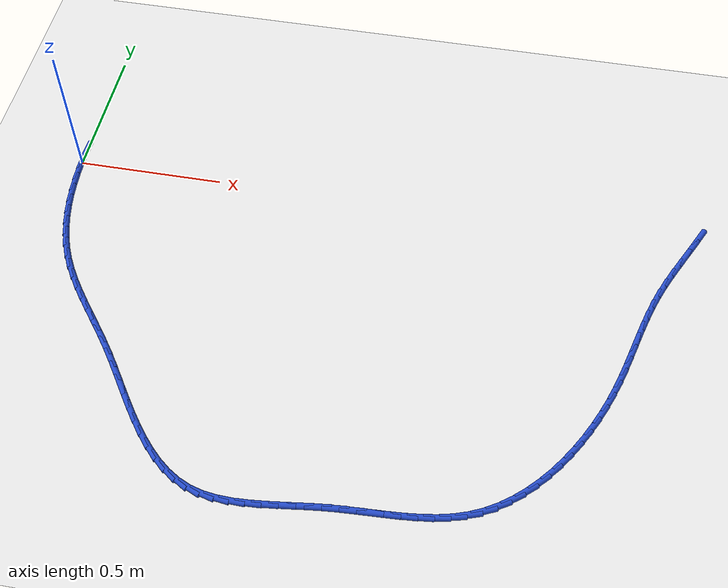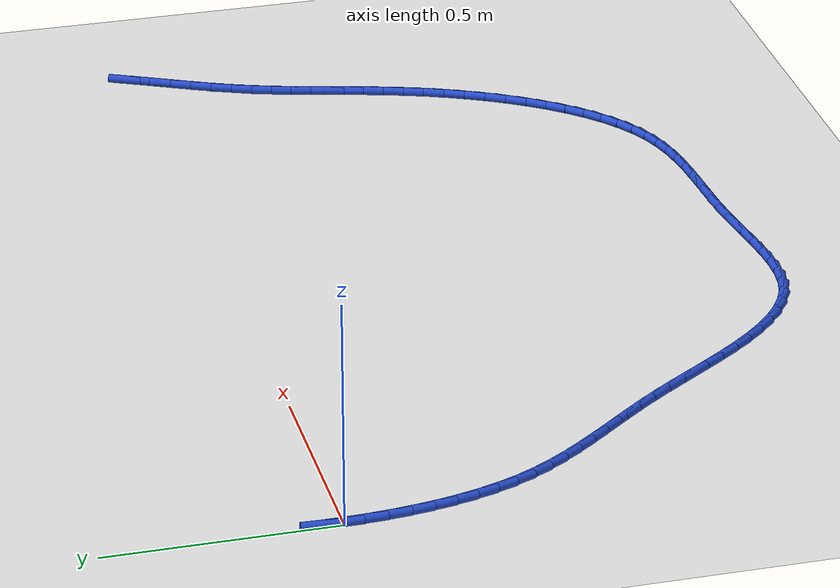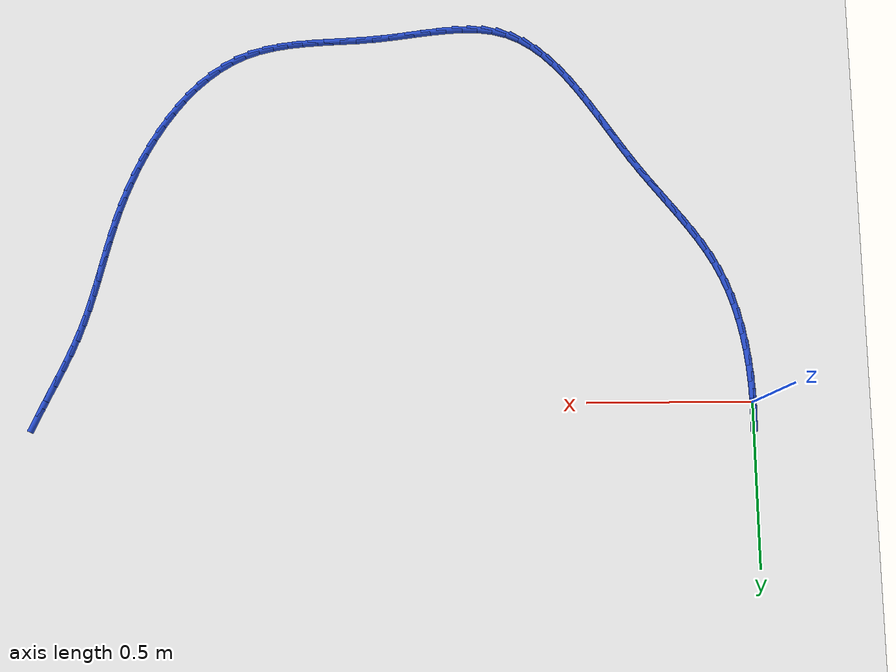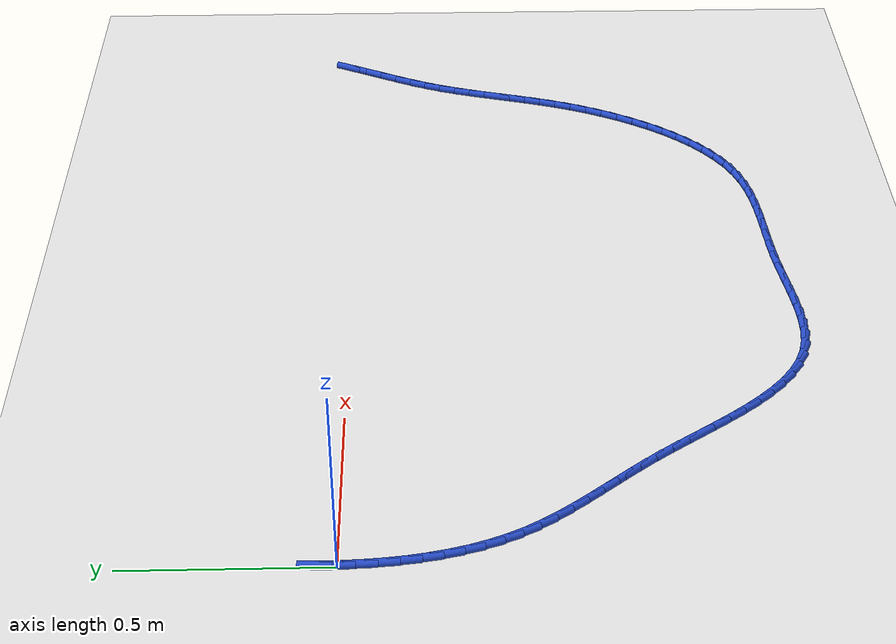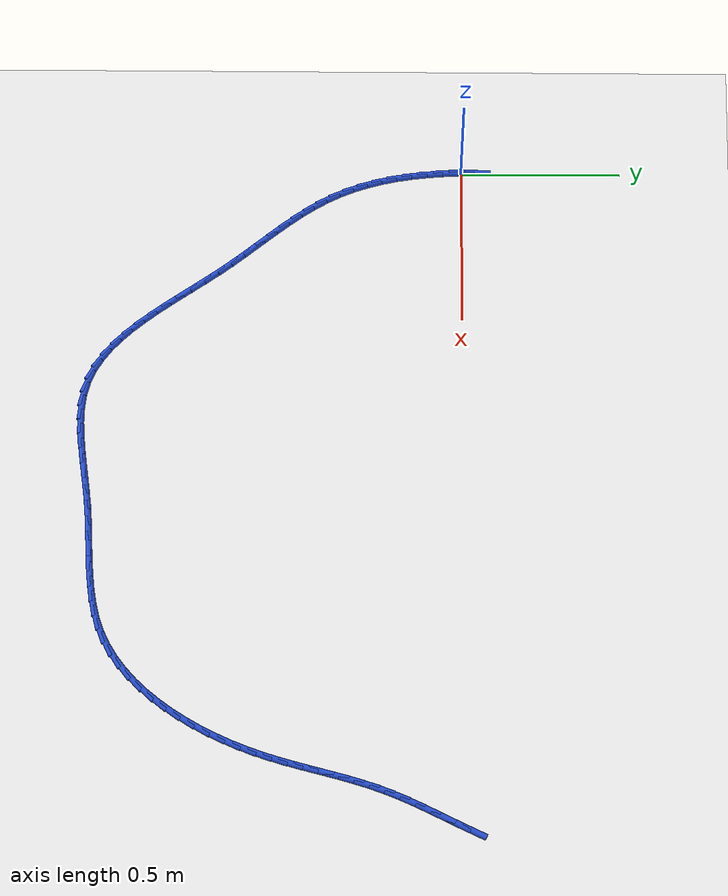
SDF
<sdf version="1.6">
 <world name="default">
  <model name="ground_plane">
   <static>1</static>
   <link name="link">
    <collision name="collision">
     <geometry><plane><normal>0 0 1</normal><size>100 100</size></plane></geometry>
     <surface><friction><ode><mu>100</mu><mu2>50</mu2></ode></friction></surface>
    </collision>
    <visual name="visual">
     <cast_shadows>0</cast_shadows>
     <geometry><plane><normal>0 0 1</normal><size>100 100</size></plane></geometry>
     <material>
      <script><uri>file://media/materials/scripts/gazebo.material</uri><name>Gazebo/WhiteGlow</name></script>
     </material>
    </visual>
   </link>
  </model>
  <model name="line">
   <link name="link_0">
    <pose>3.903127820947816e-17 -9.71445146547012e-17 0.01 0 1.57 -1.5665078907945915</pose>
    <collision name="collision">
     <geometry><cylinder><radius>0.01</radius><length>0.08</length></cylinder></geometry>
    </collision>
    <visual name="visual">
     <material>
      <script><name>Gazebo/Blue</name><uri>file://media/materials/scripts/gazebo.material</uri></script>
     </material>
     <geometry><cylinder><radius>0.01</radius><length>0.08</length></cylinder></geometry>
    </visual>
   </link>
   <link name="link_1">
    <pose>-0.00021776998812928487 0.05078043676822143 0.01 0 1.57 1.5362645749410226</pose>
    <collision name="collision">
     <geometry><cylinder><radius>0.01</radius><length>0.08</length></cylinder></geometry>
    </collision>
    <visual name="visual">
     <material>
      <script><name>Gazebo/Blue</name><uri>file://media/materials/scripts/gazebo.material</uri></script>
     </material>
     <geometry><cylinder><radius>0.01</radius><length>0.08</length></cylinder></geometry>
    </visual>
   </link>
   <link name="link_77">
    <pose>2.158488328752901 0.038236734780547114 0.01 0 1.57 1.1234611192526023</pose>
    <collision name="collision">
     <geometry><cylinder><radius>0.01</radius><length>0.08</length></cylinder></geometry>
    </collision>
    <visual name="visual">
     <material>
      <script><name>Gazebo/Blue</name><uri>file://media/materials/scripts/gazebo.material</uri></script>
     </material>
     <geometry><cylinder><radius>0.01</radius><length>0.08</length></cylinder></geometry>
    </visual>
   </link>
   <link name="link_78">
    <pose>2.13621002105485 -0.008198396959874066 0.01 0 1.57 1.112436794668999</pose>
    <collision name="collision">
     <geometry><cylinder><radius>0.01</radius><length>0.08</length></cylinder></geometry>
    </collision>
    <visual name="visual">
     <material>
      <script><name>Gazebo/Blue</name><uri>file://media/materials/scripts/gazebo.material</uri></script>
     </material>
     <geometry><cylinder><radius>0.01</radius><length>0.08</length></cylinder></geometry>
    </visual>
   </link>
   <link name="link_79">
    <pose>2.1132867126895647 -0.05465759928425971 0.01 0 1.57 1.113775816945982</pose>
    <collision name="collision">
     <geometry><cylinder><radius>0.01</radius><length>0.08</length></cylinder></geometry>
    </collision>
    <visual name="visual">
     <material>
      <script><name>Gazebo/Blue</name><uri>file://media/materials/scripts/gazebo.material</uri></script>
     </material>
     <geometry><cylinder><radius>0.01</radius><length>0.08</length></cylinder></geometry>
    </visual>
   </link>
   <link name="link_80">
    <pose>2.0904465221690356 -0.10110497853633217 0.01 0 1.57 1.1275394233834508</pose>
    <collision name="collision">
     <geometry><cylinder><radius>0.01</radius><length>0.08</length></cylinder></geometry>
    </collision>
    <visual name="visual">
     <material>
      <script><name>Gazebo/Blue</name><uri>file://media/materials/scripts/gazebo.material</uri></script>
     </material>
     <geometry><cylinder><radius>0.01</radius><length>0.08</length></cylinder></geometry>
    </visual>
   </link>
   <link name="link_81">
    <pose>2.0684175680052523 -0.14750464105981695 0.01 0 1.57 1.1542917428528983</pose>
    <collision name="collision">
     <geometry><cylinder><radius>0.01</radius><length>0.08</length></cylinder></geometry>
    </collision>
    <visual name="visual">
     <material>
      <script><name>Gazebo/Blue</name><uri>file://media/materials/scripts/gazebo.material</uri></script>
     </material>
     <geometry><cylinder><radius>0.01</radius><length>0.08</length></cylinder></geometry>
    </visual>
   </link>
   <link name="link_82">
    <pose>2.047927968710204 -0.19382069319843728 0.01 0 1.57 1.1945491460301552</pose>
    <collision name="collision">
     <geometry><cylinder><radius>0.01</radius><length>0.08</length></cylinder></geometry>
    </collision>
    <visual name="visual">
     <material>
      <script><name>Gazebo/Blue</name><uri>file://media/materials/scripts/gazebo.material</uri></script>
     </material>
     <geometry><cylinder><radius>0.01</radius><length>0.08</length></cylinder></geometry>
    </visual>
   </link>
   <link name="link_83">
    <pose>2.0296764123890405 -0.24001924617836637 0.01 0 1.57 1.237798065656722</pose>
    <collision name="collision">
     <geometry><cylinder><radius>0.01</radius><length>0.08</length></cylinder></geometry>
    </collision>
    <visual name="visual">
     <material>
      <script><name>Gazebo/Blue</name><uri>file://media/materials/scripts/gazebo.material</uri></script>
     </material>
     <geometry><cylinder><radius>0.01</radius><length>0.08</length></cylinder></geometry>
    </visual>
   </link>
   <link name="link_84">
    <pose>2.013734929550565 -0.2861091009114472 0.01 0 1.57 1.2723767447680818</pose>
    <collision name="collision">
     <geometry><cylinder><radius>0.01</radius><length>0.08</length></cylinder></geometry>
    </collision>
    <visual name="visual">
     <material>
      <script><name>Gazebo/Blue</name><uri>file://media/materials/scripts/gazebo.material</uri></script>
     </material>
     <geometry><cylinder><radius>0.01</radius><length>0.08</length></cylinder></geometry>
    </visual>
   </link>
   <link name="link_85">
    <pose>1.9995755960874382 -0.33213992891274446 0.01 0 1.57 1.2969270239284647</pose>
    <collision name="collision">
     <geometry><cylinder><radius>0.01</radius><length>0.08</length></cylinder></geometry>
    </collision>
    <visual name="visual">
     <material>
      <script><name>Gazebo/Blue</name><uri>file://media/materials/scripts/gazebo.material</uri></script>
     </material>
     <geometry><cylinder><radius>0.01</radius><length>0.08</length></cylinder></geometry>
    </visual>
   </link>
   <link name="link_86">
    <pose>1.9866464012564198 -0.3781630425470042 0.01 0 1.57 1.310870744472133</pose>
    <collision name="collision">
     <geometry><cylinder><radius>0.01</radius><length>0.08</length></cylinder></geometry>
    </collision>
    <visual name="visual">
     <material>
      <script><name>Gazebo/Blue</name><uri>file://media/materials/scripts/gazebo.material</uri></script>
     </material>
     <geometry><cylinder><radius>0.01</radius><length>0.08</length></cylinder></geometry>
    </visual>
   </link>
   <link name="link_87">
    <pose>1.9743953343142704 -0.42422975417896974 0.01 0 1.57 1.313935516654081</pose>
    <collision name="collision">
     <geometry><cylinder><radius>0.01</radius><length>0.08</length></cylinder></geometry>
    </collision>
    <visual name="visual">
     <material>
      <script><name>Gazebo/Blue</name><uri>file://media/materials/scripts/gazebo.material</uri></script>
     </material>
     <geometry><cylinder><radius>0.01</radius><length>0.08</length></cylinder></geometry>
    </visual>
   </link>
   <link name="link_88">
    <pose>1.9622703845177525 -0.47039137617338506 0.01 0 1.57 1.3061241584045669</pose>
    <collision name="collision">
     <geometry><cylinder><radius>0.01</radius><length>0.08</length></cylinder></geometry>
    </collision>
    <visual name="visual">
     <material>
      <script><name>Gazebo/Blue</name><uri>file://media/materials/scripts/gazebo.material</uri></script>
     </material>
     <geometry><cylinder><radius>0.01</radius><length>0.08</length></cylinder></geometry>
    </visual>
   </link>
   <link name="link_89">
    <pose>1.9497195411236254 -0.5166992208949959 0.01 0 1.57 1.2877023263319503</pose>
    <collision name="collision">
     <geometry><cylinder><radius>0.01</radius><length>0.08</length></cylinder></geometry>
    </collision>
    <visual name="visual">
     <material>
      <script><name>Gazebo/Blue</name><uri>file://media/materials/scripts/gazebo.material</uri></script>
     </material>
     <geometry><cylinder><radius>0.01</radius><length>0.08</length></cylinder></geometry>
    </visual>
   </link>
   <link name="link_90">
    <pose>1.9361907933886517 -0.5632046007085457 0.01 0 1.57 1.2592065426602248</pose>
    <collision name="collision">
     <geometry><cylinder><radius>0.01</radius><length>0.08</length></cylinder></geometry>
    </collision>
    <visual name="visual">
     <material>
      <script><name>Gazebo/Blue</name><uri>file://media/materials/scripts/gazebo.material</uri></script>
     </material>
     <geometry><cylinder><radius>0.01</radius><length>0.08</length></cylinder></geometry>
    </visual>
   </link>
   <link name="link_91">
    <pose>1.9211321305695923 -0.6099588279787783 0.01 0 1.57 1.2219186392631105</pose>
    <collision name="collision">
     <geometry><cylinder><radius>0.01</radius><length>0.08</length></cylinder></geometry>
    </collision>
    <visual name="visual">
     <material>
      <script><name>Gazebo/Blue</name><uri>file://media/materials/scripts/gazebo.material</uri></script>
     </material>
     <geometry><cylinder><radius>0.01</radius><length>0.08</length></cylinder></geometry>
    </visual>
   </link>
   <link name="link_92">
    <pose>1.9040258923885005 -0.656985361331058 0.01 0 1.57 1.1810063561791417</pose>
    <collision name="collision">
     <geometry><cylinder><radius>0.01</radius><length>0.08</length></cylinder></geometry>
    </collision>
    <visual name="visual">
     <material>
      <script><name>Gazebo/Blue</name><uri>file://media/materials/scripts/gazebo.material</uri></script>
     </material>
     <geometry><cylinder><radius>0.01</radius><length>0.08</length></cylinder></geometry>
    </visual>
   </link>
   <link name="link_93">
    <pose>1.8847008460181476 -0.7040267519897903 0.01 0 1.57 1.1385644556251986</pose>
    <collision name="collision">
     <geometry><cylinder><radius>0.01</radius><length>0.08</length></cylinder></geometry>
    </collision>
    <visual name="visual">
     <material>
      <script><name>Gazebo/Blue</name><uri>file://media/materials/scripts/gazebo.material</uri></script>
     </material>
     <geometry><cylinder><radius>0.01</radius><length>0.08</length></cylinder></geometry>
    </visual>
   </link>
   <link name="link_94">
    <pose>1.863186463786932 -0.750662805520779 0.01 0 1.57 1.093834689427655</pose>
    <collision name="collision">
     <geometry><cylinder><radius>0.01</radius><length>0.08</length></cylinder></geometry>
    </collision>
    <visual name="visual">
     <material>
      <script><name>Gazebo/Blue</name><uri>file://media/materials/scripts/gazebo.material</uri></script>
     </material>
     <geometry><cylinder><radius>0.01</radius><length>0.08</length></cylinder></geometry>
    </visual>
   </link>
   <link name="link_95">
    <pose>1.8395146734349448 -0.796471336471751 0.01 0 1.57 1.0459995892679423</pose>
    <collision name="collision">
     <geometry><cylinder><radius>0.01</radius><length>0.08</length></cylinder></geometry>
    </collision>
    <visual name="visual">
     <material>
      <script><name>Gazebo/Blue</name><uri>file://media/materials/scripts/gazebo.material</uri></script>
     </material>
     <geometry><cylinder><radius>0.01</radius><length>0.08</length></cylinder></geometry>
    </visual>
   </link>
   <link name="link_96">
    <pose>1.813717402702276 -0.8410301593904312 0.01 0 1.57 0.9941864259702774</pose>
    <collision name="collision">
     <geometry><cylinder><radius>0.01</radius><length>0.08</length></cylinder></geometry>
    </collision>
    <visual name="visual">
     <material>
      <script><name>Gazebo/Blue</name><uri>file://media/materials/scripts/gazebo.material</uri></script>
     </material>
     <geometry><cylinder><radius>0.01</radius><length>0.08</length></cylinder></geometry>
    </visual>
   </link>
   <link name="link_97">
    <pose>1.785826579329015 -0.8839170888245487 0.01 0 1.57 0.9374469109844183</pose>
    <collision name="collision">
     <geometry><cylinder><radius>0.01</radius><length>0.08</length></cylinder></geometry>
    </collision>
    <visual name="visual">
     <material>
      <script><name>Gazebo/Blue</name><uri>file://media/materials/scripts/gazebo.material</uri></script>
     </material>
     <geometry><cylinder><radius>0.01</radius><length>0.08</length></cylinder></geometry>
    </visual>
   </link>
   <link name="link_98">
    <pose>1.755874131055251 -0.9247099393218283 0.01 0 1.57 0.8747490651686205</pose>
    <collision name="collision">
     <geometry><cylinder><radius>0.01</radius><length>0.08</length></cylinder></geometry>
    </collision>
    <visual name="visual">
     <material>
      <script><name>Gazebo/Blue</name><uri>file://media/materials/scripts/gazebo.material</uri></script>
     </material>
     <geometry><cylinder><radius>0.01</radius><length>0.08</length></cylinder></geometry>
    </visual>
   </link>
   <link name="link_99">
    <pose>1.7238919856210746 -0.9629865254299985 0.01 0 1.57 0.8049897071748252</pose>
    <collision name="collision">
     <geometry><cylinder><radius>0.01</radius><length>0.08</length></cylinder></geometry>
    </collision>
    <visual name="visual">
     <material>
      <script><name>Gazebo/Blue</name><uri>file://media/materials/scripts/gazebo.material</uri></script>
     </material>
     <geometry><cylinder><radius>0.01</radius><length>0.08</length></cylinder></geometry>
    </visual>
   </link>
   <link name="link_100">
    <pose>1.6899120707665753 -0.9983246616967851 0.01 0 1.57 0.7270418638243707</pose>
    <collision name="collision">
     <geometry><cylinder><radius>0.01</radius><length>0.08</length></cylinder></geometry>
    </collision>
    <visual name="visual">
     <material>
      <script><name>Gazebo/Blue</name><uri>file://media/materials/scripts/gazebo.material</uri></script>
     </material>
     <geometry><cylinder><radius>0.01</radius><length>0.08</length></cylinder></geometry>
    </visual>
   </link>
   <link name="link_101">
    <pose>1.6539663142318444 -1.0303021626699145 0.01 0 1.57 0.6398574121040104</pose>
    <collision name="collision">
     <geometry><cylinder><radius>0.01</radius><length>0.08</length></cylinder></geometry>
    </collision>
    <visual name="visual">
     <material>
      <script><name>Gazebo/Blue</name><uri>file://media/materials/scripts/gazebo.material</uri></script>
     </material>
     <geometry><cylinder><radius>0.01</radius><length>0.08</length></cylinder></geometry>
    </visual>
   </link>
   <link name="link_102">
    <pose>1.6160866437569699 -1.0584968428971144 0.01 0 1.57 0.5426470738250866</pose>
    <collision name="collision">
     <geometry><cylinder><radius>0.01</radius><length>0.08</length></cylinder></geometry>
    </collision>
    <visual name="visual">
     <material>
      <script><name>Gazebo/Blue</name><uri>file://media/materials/scripts/gazebo.material</uri></script>
     </material>
     <geometry><cylinder><radius>0.01</radius><length>0.08</length></cylinder></geometry>
    </visual>
   </link>
   <link name="link_103">
    <pose>1.5763049870820425 -1.0824865169261113 0.01 0 1.57 0.43520589727855974</pose>
    <collision name="collision">
     <geometry><cylinder><radius>0.01</radius><length>0.08</length></cylinder></geometry>
    </collision>
    <visual name="visual">
     <material>
      <script><name>Gazebo/Blue</name><uri>file://media/materials/scripts/gazebo.material</uri></script>
     </material>
     <geometry><cylinder><radius>0.01</radius><length>0.08</length></cylinder></geometry>
    </visual>
   </link>
   <link name="link_104">
    <pose>1.5346536283179564 -1.1018517759970756 0.01 0 1.57 0.32613111817889523</pose>
    <collision name="collision">
     <geometry><cylinder><radius>0.01</radius><length>0.08</length></cylinder></geometry>
    </collision>
    <visual name="visual">
     <material>
      <script><name>Gazebo/Blue</name><uri>file://media/materials/scripts/gazebo.material</uri></script>
     </material>
     <geometry><cylinder><radius>0.01</radius><length>0.08</length></cylinder></geometry>
    </visual>
   </link>
   <link name="link_105">
    <pose>1.4912124305502454 -1.1165439268463355 0.01 0 1.57 0.23336789422450266</pose>
    <collision name="collision">
     <geometry><cylinder><radius>0.01</radius><length>0.08</length></cylinder></geometry>
    </collision>
    <visual name="visual">
     <material>
      <script><name>Gazebo/Blue</name><uri>file://media/materials/scripts/gazebo.material</uri></script>
     </material>
     <geometry><cylinder><radius>0.01</radius><length>0.08</length></cylinder></geometry>
    </visual>
   </link>
   <link name="link_106">
    <pose>1.446156162805757 -1.1272537436616976 0.01 0 1.57 0.16008862207527763</pose>
    <collision name="collision">
     <geometry><cylinder><radius>0.01</radius><length>0.08</length></cylinder></geometry>
    </collision>
    <visual name="visual">
     <material>
      <script><name>Gazebo/Blue</name><uri>file://media/materials/scripts/gazebo.material</uri></script>
     </material>
     <geometry><cylinder><radius>0.01</radius><length>0.08</length></cylinder></geometry>
    </visual>
   </link>
   <link name="link_107">
    <pose>1.3996708554739707 -1.1347597444646211 0.01 0 1.57 0.10605111599772638</pose>
    <collision name="collision">
     <geometry><cylinder><radius>0.01</radius><length>0.08</length></cylinder></geometry>
    </collision>
    <visual name="visual">
     <material>
      <script><name>Gazebo/Blue</name><uri>file://media/materials/scripts/gazebo.material</uri></script>
     </material>
     <geometry><cylinder><radius>0.01</radius><length>0.08</length></cylinder></geometry>
    </visual>
   </link>
   <link name="link_108">
    <pose>1.3519425389443682 -1.1398404472765646 0.01 0 1.57 0.07027257805158596</pose>
    <collision name="collision">
     <geometry><cylinder><radius>0.01</radius><length>0.08</length></cylinder></geometry>
    </collision>
    <visual name="visual">
     <material>
      <script><name>Gazebo/Blue</name><uri>file://media/materials/scripts/gazebo.material</uri></script>
     </material>
     <geometry><cylinder><radius>0.01</radius><length>0.08</length></cylinder></geometry>
    </visual>
   </link>
   <link name="link_109">
    <pose>1.3031572436064291 -1.143274370118987 0.01 0 1.57 0.05162253989207205</pose>
    <collision name="collision">
     <geometry><cylinder><radius>0.01</radius><length>0.08</length></cylinder></geometry>
    </collision>
    <visual name="visual">
     <material>
      <script><name>Gazebo/Blue</name><uri>file://media/materials/scripts/gazebo.material</uri></script>
     </material>
     <geometry><cylinder><radius>0.01</radius><length>0.08</length></cylinder></geometry>
    </visual>
   </link>
   <link name="link_110">
    <pose>1.253500999849633 -1.1458400310133459 0.01 0 1.57 0.049143154525525964</pose>
    <collision name="collision">
     <geometry><cylinder><radius>0.01</radius><length>0.08</length></cylinder></geometry>
    </collision>
    <visual name="visual">
     <material>
      <script><name>Gazebo/Blue</name><uri>file://media/materials/scripts/gazebo.material</uri></script>
     </material>
     <geometry><cylinder><radius>0.01</radius><length>0.08</length></cylinder></geometry>
    </visual>
   </link>
   <link name="link_111">
    <pose>1.2031598380634616 -1.148315947981101 0.01 0 1.57 0.0621677800622184</pose>
    <collision name="collision">
     <geometry><cylinder><radius>0.01</radius><length>0.08</length></cylinder></geometry>
    </collision>
    <visual name="visual">
     <material>
      <script><name>Gazebo/Blue</name><uri>file://media/materials/scripts/gazebo.material</uri></script>
     </material>
     <geometry><cylinder><radius>0.01</radius><length>0.08</length></cylinder></geometry>
    </visual>
   </link>
   <link name="link_112">
    <pose>1.1523197886373961 -1.1514806390437105 0.01 0 1.57 0.09002186008904417</pose>
    <collision name="collision">
     <geometry><cylinder><radius>0.01</radius><length>0.08</length></cylinder></geometry>
    </collision>
    <visual name="visual">
     <material>
      <script><name>Gazebo/Blue</name><uri>file://media/materials/scripts/gazebo.material</uri></script>
     </material>
     <geometry><cylinder><radius>0.01</radius><length>0.08</length></cylinder></geometry>
    </visual>
   </link>
   <link name="link_113">
    <pose>1.1011680888002466 -1.1560978895866783 0.01 0 1.57 0.11906756375685604</pose>
    <collision name="collision">
     <geometry><cylinder><radius>0.01</radius><length>0.08</length></cylinder></geometry>
    </collision>
    <visual name="visual">
     <material>
      <script><name>Gazebo/Blue</name><uri>file://media/materials/scripts/gazebo.material</uri></script>
     </material>
     <geometry><cylinder><radius>0.01</radius><length>0.08</length></cylinder></geometry>
    </visual>
   </link>
   <link name="link_114">
    <pose>1.0499498230578168 -1.162225307420507 0.01 0 1.57 0.13058110718384763</pose>
    <collision name="collision">
     <geometry><cylinder><radius>0.01</radius><length>0.08</length></cylinder></geometry>
    </collision>
    <visual name="visual">
     <material>
      <script><name>Gazebo/Blue</name><uri>file://media/materials/scripts/gazebo.material</uri></script>
     </material>
     <geometry><cylinder><radius>0.01</radius><length>0.08</length></cylinder></geometry>
    </visual>
   </link>
   <link name="link_115">
    <pose>0.9989922389265684 -1.1689174855442113 0.01 0 1.57 0.12317605533995923</pose>
    <collision name="collision">
     <geometry><cylinder><radius>0.01</radius><length>0.08</length></cylinder></geometry>
    </collision>
    <visual name="visual">
     <material>
      <script><name>Gazebo/Blue</name><uri>file://media/materials/scripts/gazebo.material</uri></script>
     </material>
     <geometry><cylinder><radius>0.01</radius><length>0.08</length></cylinder></geometry>
    </visual>
   </link>
   <link name="link_116">
    <pose>0.9486288424002532 -1.1751526158443675 0.01 0 1.57 0.09591609672744952</pose>
    <collision name="collision">
     <geometry><cylinder><radius>0.01</radius><length>0.08</length></cylinder></geometry>
    </collision>
    <visual name="visual">
     <material>
      <script><name>Gazebo/Blue</name><uri>file://media/materials/scripts/gazebo.material</uri></script>
     </material>
     <geometry><cylinder><radius>0.01</radius><length>0.08</length></cylinder></geometry>
    </visual>
   </link>
   <link name="link_117">
    <pose>0.899193139472622 -1.1799088902075512 0.01 0 1.57 0.04678749173663298</pose>
    <collision name="collision">
     <geometry><cylinder><radius>0.01</radius><length>0.08</length></cylinder></geometry>
    </collision>
    <visual name="visual">
     <material>
      <script><name>Gazebo/Blue</name><uri>file://media/materials/scripts/gazebo.material</uri></script>
     </material>
     <geometry><cylinder><radius>0.01</radius><length>0.08</length></cylinder></geometry>
    </visual>
   </link>
   <link name="link_118">
    <pose>0.8510186361374239 -1.1821645005203372 0.01 0 1.57 -0.02719096430996269</pose>
    <collision name="collision">
     <geometry><cylinder><radius>0.01</radius><length>0.08</length></cylinder></geometry>
    </collision>
    <visual name="visual">
     <material>
      <script><name>Gazebo/Blue</name><uri>file://media/materials/scripts/gazebo.material</uri></script>
     </material>
     <geometry><cylinder><radius>0.01</radius><length>0.08</length></cylinder></geometry>
    </visual>
   </link>
   <link name="link_119">
    <pose>0.8044388383884109 -1.1808976386693015 0.01 0 1.57 -0.12941674257628674</pose>
    <collision name="collision">
     <geometry><cylinder><radius>0.01</radius><length>0.08</length></cylinder></geometry>
    </collision>
    <visual name="visual">
     <material>
      <script><name>Gazebo/Blue</name><uri>file://media/materials/scripts/gazebo.material</uri></script>
     </material>
     <geometry><cylinder><radius>0.01</radius><length>0.08</length></cylinder></geometry>
    </visual>
   </link>
   <link name="link_120">
    <pose>0.7597872522193323 -1.1750864965410202 0.01 0 1.57 -0.26215805260979347</pose>
    <collision name="collision">
     <geometry><cylinder><radius>0.01</radius><length>0.08</length></cylinder></geometry>
    </collision>
    <visual name="visual">
     <material>
      <script><name>Gazebo/Blue</name><uri>file://media/materials/scripts/gazebo.material</uri></script>
     </material>
     <geometry><cylinder><radius>0.01</radius><length>0.08</length></cylinder></geometry>
    </visual>
   </link>
   <link name="link_121">
    <pose>0.7173965393607145 -1.1637116420378675 0.01 0 1.57 -0.41218297625623423</pose>
    <collision name="collision">
     <geometry><cylinder><radius>0.01</radius><length>0.08</length></cylinder></geometry>
    </collision>
    <visual name="visual">
     <material>
      <script><name>Gazebo/Blue</name><uri>file://media/materials/scripts/gazebo.material</uri></script>
     </material>
     <geometry><cylinder><radius>0.01</radius><length>0.08</length></cylinder></geometry>
    </visual>
   </link>
   <link name="link_122">
    <pose>0.677427898639434 -1.1462361922913642 0.01 0 1.57 -0.5479385559670195</pose>
    <collision name="collision">
     <geometry><cylinder><radius>0.01</radius><length>0.08</length></cylinder></geometry>
    </collision>
    <visual name="visual">
     <material>
      <script><name>Gazebo/Blue</name><uri>file://media/materials/scripts/gazebo.material</uri></script>
     </material>
     <geometry><cylinder><radius>0.01</radius><length>0.08</length></cylinder></geometry>
    </visual>
   </link>
   <link name="link_123">
    <pose>0.6396636015948199 -1.1231896821047995 0.01 0 1.57 -0.6624117836331482</pose>
    <collision name="collision">
     <geometry><cylinder><radius>0.01</radius><length>0.08</length></cylinder></geometry>
    </collision>
    <visual name="visual">
     <material>
      <script><name>Gazebo/Blue</name><uri>file://media/materials/scripts/gazebo.material</uri></script>
     </material>
     <geometry><cylinder><radius>0.01</radius><length>0.08</length></cylinder></geometry>
    </visual>
   </link>
   <link name="link_124">
    <pose>0.6038352061893792 -1.0952443698495535 0.01 0 1.57 -0.755420773059732</pose>
    <collision name="collision">
     <geometry><cylinder><radius>0.01</radius><length>0.08</length></cylinder></geometry>
    </collision>
    <visual name="visual">
     <material>
      <script><name>Gazebo/Blue</name><uri>file://media/materials/scripts/gazebo.material</uri></script>
     </material>
     <geometry><cylinder><radius>0.01</radius><length>0.08</length></cylinder></geometry>
    </visual>
   </link>
   <link name="link_125">
    <pose>0.5696742703856189 -1.063072513897007 0.01 0 1.57 -0.8286520421434223</pose>
    <collision name="collision">
     <geometry><cylinder><radius>0.01</radius><length>0.08</length></cylinder></geometry>
    </collision>
    <visual name="visual">
     <material>
      <script><name>Gazebo/Blue</name><uri>file://media/materials/scripts/gazebo.material</uri></script>
     </material>
     <geometry><cylinder><radius>0.01</radius><length>0.08</length></cylinder></geometry>
    </visual>
   </link>
   <link name="link_126">
    <pose>0.5369123521460438 -1.027346372618538 0.01 0 1.57 -0.8844024878372101</pose>
    <collision name="collision">
     <geometry><cylinder><radius>0.01</radius><length>0.08</length></cylinder></geometry>
    </collision>
    <visual name="visual">
     <material>
      <script><name>Gazebo/Blue</name><uri>file://media/materials/scripts/gazebo.material</uri></script>
     </material>
     <geometry><cylinder><radius>0.01</radius><length>0.08</length></cylinder></geometry>
    </visual>
   </link>
   <link name="link_127">
    <pose>0.5052810094331616 -0.9887382043855273 0.01 0 1.57 -0.9248575204671827</pose>
    <collision name="collision">
     <geometry><cylinder><radius>0.01</radius><length>0.08</length></cylinder></geometry>
    </collision>
    <visual name="visual">
     <material>
      <script><name>Gazebo/Blue</name><uri>file://media/materials/scripts/gazebo.material</uri></script>
     </material>
     <geometry><cylinder><radius>0.01</radius><length>0.08</length></cylinder></geometry>
    </visual>
   </link>
   <link name="link_128">
    <pose>0.474511800209477 -0.9479202675693534 0.01 0 1.57 -0.9517731539576132</pose>
    <collision name="collision">
     <geometry><cylinder><radius>0.01</radius><length>0.08</length></cylinder></geometry>
    </collision>
    <visual name="visual">
     <material>
      <script><name>Gazebo/Blue</name><uri>file://media/materials/scripts/gazebo.material</uri></script>
     </material>
     <geometry><cylinder><radius>0.01</radius><length>0.08</length></cylinder></geometry>
    </visual>
   </link>
   <link name="link_129">
    <pose>0.4443362824374967 -0.9055648205413964 0.01 0 1.57 -0.9663748138506109</pose>
    <collision name="collision">
     <geometry><cylinder><radius>0.01</radius><length>0.08</length></cylinder></geometry>
    </collision>
    <visual name="visual">
     <material>
      <script><name>Gazebo/Blue</name><uri>file://media/materials/scripts/gazebo.material</uri></script>
     </material>
     <geometry><cylinder><radius>0.01</radius><length>0.08</length></cylinder></geometry>
    </visual>
   </link>
   <link name="link_130">
    <pose>0.4144860140797278 -0.8623441216730368 0.01 0 1.57 -0.9693455260705565</pose>
    <collision name="collision">
     <geometry><cylinder><radius>0.01</radius><length>0.08</length></cylinder></geometry>
    </collision>
    <visual name="visual">
     <material>
      <script><name>Gazebo/Blue</name><uri>file://media/materials/scripts/gazebo.material</uri></script>
     </material>
     <geometry><cylinder><radius>0.01</radius><length>0.08</length></cylinder></geometry>
    </visual>
   </link>
   <link name="link_131">
    <pose>0.3846925530986753 -0.8189304293356527 0.01 0 1.57 -0.9608367854623902</pose>
    <collision name="collision">
     <geometry><cylinder><radius>0.01</radius><length>0.08</length></cylinder></geometry>
    </collision>
    <visual name="visual">
     <material>
      <script><name>Gazebo/Blue</name><uri>file://media/materials/scripts/gazebo.material</uri></script>
     </material>
     <geometry><cylinder><radius>0.01</radius><length>0.08</length></cylinder></geometry>
    </visual>
   </link>
   <link name="link_132">
    <pose>0.35468745745684627 -0.775996001900625 0.01 0 1.57 -0.9405130359087103</pose>
    <collision name="collision">
     <geometry><cylinder><radius>0.01</radius><length>0.08</length></cylinder></geometry>
    </collision>
    <visual name="visual">
     <material>
      <script><name>Gazebo/Blue</name><uri>file://media/materials/scripts/gazebo.material</uri></script>
     </material>
     <geometry><cylinder><radius>0.01</radius><length>0.08</length></cylinder></geometry>
    </visual>
   </link>
   <link name="link_133">
    <pose>0.32420346312883036 -0.7342112739880076 0.01 0 1.57 -0.9144335182135365</pose>
    <collision name="collision">
     <geometry><cylinder><radius>0.01</radius><length>0.08</length></cylinder></geometry>
    </collision>
    <visual name="visual">
     <material>
      <script><name>Gazebo/Blue</name><uri>file://media/materials/scripts/gazebo.material</uri></script>
     </material>
     <geometry><cylinder><radius>0.01</radius><length>0.08</length></cylinder></geometry>
    </visual>
   </link>
   <link name="link_134">
    <pose>0.2931765861131411 -0.6939319701924701 0.01 0 1.57 -0.8971356732714064</pose>
    <collision name="collision">
     <geometry><cylinder><radius>0.01</radius><length>0.08</length></cylinder></geometry>
    </collision>
    <visual name="visual">
     <material>
      <script><name>Gazebo/Blue</name><uri>file://media/materials/scripts/gazebo.material</uri></script>
     </material>
     <geometry><cylinder><radius>0.01</radius><length>0.08</length></cylinder></geometry>
    </visual>
   </link>
   <link name="link_135">
    <pose>0.26197545295973856 -0.6548440647072412 0.01 0 1.57 -0.8910715229571115</pose>
    <collision name="collision">
     <geometry><cylinder><radius>0.01</radius><length>0.08</length></cylinder></geometry>
    </collision>
    <visual name="visual">
     <material>
      <script><name>Gazebo/Blue</name><uri>file://media/materials/scripts/gazebo.material</uri></script>
     </material>
     <geometry><cylinder><radius>0.01</radius><length>0.08</length></cylinder></geometry>
    </visual>
   </link>
   <link name="link_136">
    <pose>0.23102411251116065 -0.6165477291426457 0.01 0 1.57 -0.8967986462705045</pose>
    <collision name="collision">
     <geometry><cylinder><radius>0.01</radius><length>0.08</length></cylinder></geometry>
    </collision>
    <visual name="visual">
     <material>
      <script><name>Gazebo/Blue</name><uri>file://media/materials/scripts/gazebo.material</uri></script>
     </material>
     <geometry><cylinder><radius>0.01</radius><length>0.08</length></cylinder></geometry>
    </visual>
   </link>
   <link name="link_137">
    <pose>0.20074661360994725 -0.578643135109011 0.01 0 1.57 -0.914835488270019</pose>
    <collision name="collision">
     <geometry><cylinder><radius>0.01</radius><length>0.08</length></cylinder></geometry>
    </collision>
    <visual name="visual">
     <material>
      <script><name>Gazebo/Blue</name><uri>file://media/materials/scripts/gazebo.material</uri></script>
     </material>
     <geometry><cylinder><radius>0.01</radius><length>0.08</length></cylinder></geometry>
    </visual>
   </link>
   <link name="link_138">
    <pose>0.1715670050986379 -0.5407304542166642 0.01 0 1.57 -0.9456254925782437</pose>
    <collision name="collision">
     <geometry><cylinder><radius>0.01</radius><length>0.08</length></cylinder></geometry>
    </collision>
    <visual name="visual">
     <material>
      <script><name>Gazebo/Blue</name><uri>file://media/materials/scripts/gazebo.material</uri></script>
     </material>
     <geometry><cylinder><radius>0.01</radius><length>0.08</length></cylinder></geometry>
    </visual>
   </link>
   <link name="link_139">
    <pose>0.14390933581977083 -0.5024098580759304 0.01 0 1.57 -0.989438058253702</pose>
    <collision name="collision">
     <geometry><cylinder><radius>0.01</radius><length>0.08</length></cylinder></geometry>
    </collision>
    <visual name="visual">
     <material>
      <script><name>Gazebo/Blue</name><uri>file://media/materials/scripts/gazebo.material</uri></script>
     </material>
     <geometry><cylinder><radius>0.01</radius><length>0.08</length></cylinder></geometry>
    </visual>
   </link>
   <link name="link_140">
    <pose>0.11819765461588615 -0.46328151829713776 0.01 0 1.57 -1.046199734481172</pose>
    <collision name="collision">
     <geometry><cylinder><radius>0.01</radius><length>0.08</length></cylinder></geometry>
    </collision>
    <visual name="visual">
     <material>
      <script><name>Gazebo/Blue</name><uri>file://media/materials/scripts/gazebo.material</uri></script>
     </material>
     <geometry><cylinder><radius>0.01</radius><length>0.08</length></cylinder></geometry>
    </visual>
   </link>
   <link name="link_141">
    <pose>0.0948560103295222 -0.4229456064906111 0.01 0 1.57 -1.1146524846849004</pose>
    <collision name="collision">
     <geometry><cylinder><radius>0.01</radius><length>0.08</length></cylinder></geometry>
    </collision>
    <visual name="visual">
     <material>
      <script><name>Gazebo/Blue</name><uri>file://media/materials/scripts/gazebo.material</uri></script>
     </material>
     <geometry><cylinder><radius>0.01</radius><length>0.08</length></cylinder></geometry>
    </visual>
   </link>
   <link name="link_142">
    <pose>0.07428677013458754 -0.3810236189676803 0.01 0 1.57 -1.1848204960060995</pose>
    <collision name="collision">
     <geometry><cylinder><radius>0.01</radius><length>0.08</length></cylinder></geometry>
    </collision>
    <visual name="visual">
     <material>
      <script><name>Gazebo/Blue</name><uri>file://media/materials/scripts/gazebo.material</uri></script>
     </material>
     <geometry><cylinder><radius>0.01</radius><length>0.08</length></cylinder></geometry>
    </visual>
   </link>
   <link name="link_143">
    <pose>0.056578503725388286 -0.3374456831483637 0.01 0 1.57 -1.249621730652552</pose>
    <collision name="collision">
     <geometry><cylinder><radius>0.01</radius><length>0.08</length></cylinder></geometry>
    </collision>
    <visual name="visual">
     <material>
      <script><name>Gazebo/Blue</name><uri>file://media/materials/scripts/gazebo.material</uri></script>
     </material>
     <geometry><cylinder><radius>0.01</radius><length>0.08</length></cylinder></geometry>
    </visual>
   </link>
   <link name="link_144">
    <pose>0.041583540007000375 -0.29237427776661984 0.01 0 1.57 -1.3089336463689083</pose>
    <collision name="collision">
     <geometry><cylinder><radius>0.01</radius><length>0.08</length></cylinder></geometry>
    </collision>
    <visual name="visual">
     <material>
      <script><name>Gazebo/Blue</name><uri>file://media/materials/scripts/gazebo.material</uri></script>
     </material>
     <geometry><cylinder><radius>0.01</radius><length>0.08</length></cylinder></geometry>
    </visual>
   </link>
   <link name="link_145">
    <pose>0.029148430511500754 -0.24597756381057162 0.01 0 1.57 -1.3629504696502794</pose>
    <collision name="collision">
     <geometry><cylinder><radius>0.01</radius><length>0.08</length></cylinder></geometry>
    </collision>
    <visual name="visual">
     <material>
      <script><name>Gazebo/Blue</name><uri>file://media/materials/scripts/gazebo.material</uri></script>
     </material>
     <geometry><cylinder><radius>0.01</radius><length>0.08</length></cylinder></geometry>
    </visual>
   </link>
   <link name="link_146">
    <pose>0.01911972677096552 -0.19842370226833891 0.01 0 1.57 -1.4119624887404345</pose>
    <collision name="collision">
     <geometry><cylinder><radius>0.01</radius><length>0.08</length></cylinder></geometry>
    </collision>
    <visual name="visual">
     <material>
      <script><name>Gazebo/Blue</name><uri>file://media/materials/scripts/gazebo.material</uri></script>
     </material>
     <geometry><cylinder><radius>0.01</radius><length>0.08</length></cylinder></geometry>
    </visual>
   </link>
   <link name="link_147">
    <pose>0.011343980317471357 -0.14988085412804378 0.01 0 1.57 -1.456310993120515</pose>
    <collision name="collision">
     <geometry><cylinder><radius>0.01</radius><length>0.08</length></cylinder></geometry>
    </collision>
    <visual name="visual">
     <material>
      <script><name>Gazebo/Blue</name><uri>file://media/materials/scripts/gazebo.material</uri></script>
     </material>
     <geometry><cylinder><radius>0.01</radius><length>0.08</length></cylinder></geometry>
    </visual>
   </link>
   <link name="link_148">
    <pose>0.00566774268309481 -0.10051718037780856 0.01 0 1.57 -1.4963549626801675</pose>
    <collision name="collision">
     <geometry><cylinder><radius>0.01</radius><length>0.08</length></cylinder></geometry>
    </collision>
    <visual name="visual">
     <material>
      <script><name>Gazebo/Blue</name><uri>file://media/materials/scripts/gazebo.material</uri></script>
     </material>
     <geometry><cylinder><radius>0.01</radius><length>0.08</length></cylinder></geometry>
    </visual>
   </link>
   <link name="link_149">
    <pose>0.0019375653999121707 -0.05050084200575292 0.01 0 1.57 -1.5324481439487405</pose>
    <collision name="collision">
     <geometry><cylinder><radius>0.01</radius><length>0.08</length></cylinder></geometry>
    </collision>
    <visual name="visual">
     <material>
      <script><name>Gazebo/Blue</name><uri>file://media/materials/scripts/gazebo.material</uri></script>
     </material>
     <geometry><cylinder><radius>0.01</radius><length>0.08</length></cylinder></geometry>
    </visual>
   </link>
   <link name="link_150">
    <pose>3.2959746043559335e-17 2.7755575615628914e-17 0.01 0 1.57 -1.5649243258776486</pose>
    <collision name="collision">
     <geometry><cylinder><radius>0.01</radius><length>0.08</length></cylinder></geometry>
    </collision>
    <visual name="visual">
     <material>
      <script><name>Gazebo/Blue</name><uri>file://media/materials/scripts/gazebo.material</uri></script>
     </material>
     <geometry><cylinder><radius>0.01</radius><length>0.08</length></cylinder></geometry>
    </visual>
   </link>
  </model>
 </world>
</sdf>
